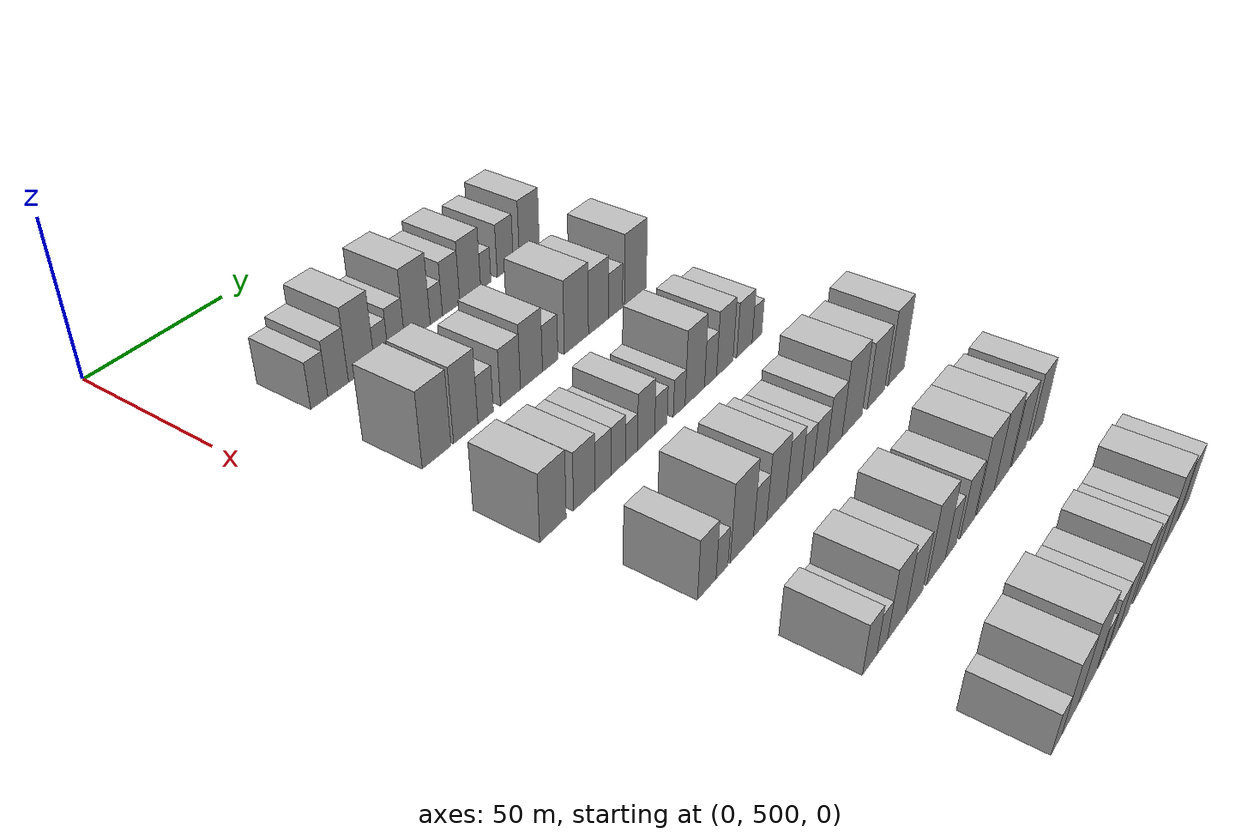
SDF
<sdf version="1.6">
 <world name="default">
  <model name="building_127">
   <static>1</static>
   <pose>50.0000 528.6047 0 0.000000 0.000000 0.000000</pose>
   <link name="link">
    <pose>0 0 7.50 0 0 0</pose>
    <collision name="collision"><geometry><box><size>20.0000 6.4215 15.0000</size></box></geometry></collision>
    <visual name="visual">
     <cast_shadows>0</cast_shadows>
     <geometry><box><size>20.0000 6.4215 15.0000</size></box></geometry>
     <material>
      <script>
       <uri>model://HANNAS_wall/materials/scripts</uri>
       <uri>model://HANNAS_wall/materials/textures</uri>
       <name>vrc/HANNAS_wall</name>
      </script>
     </material>
    </visual>
   </link>
  </model>
  <model name="building_128">
   <static>1</static>
   <pose>50.0000 535.7948 0 0.000000 0.000000 0.000000</pose>
   <link name="link">
    <pose>0 0 9.00 0 0 0</pose>
    <collision name="collision"><geometry><box><size>20.0000 7.9586 18.0000</size></box></geometry></collision>
    <visual name="visual">
     <cast_shadows>0</cast_shadows>
     <geometry><box><size>20.0000 7.9586 18.0000</size></box></geometry>
     <material>
      <script>
       <uri>model://HANNAS_wall/materials/scripts</uri>
       <uri>model://HANNAS_wall/materials/textures</uri>
       <name>vrc/HANNAS_wall</name>
      </script>
     </material>
    </visual>
   </link>
  </model>
  <model name="building_129">
   <static>1</static>
   <pose>50.0000 544.9164 0 0.000000 0.000000 0.000000</pose>
   <link name="link">
    <pose>0 0 12.00 0 0 0</pose>
    <collision name="collision"><geometry><box><size>20.0000 10.2847 24.0000</size></box></geometry></collision>
    <visual name="visual">
     <cast_shadows>0</cast_shadows>
     <geometry><box><size>20.0000 10.2847 24.0000</size></box></geometry>
     <material>
      <script>
       <uri>model://HANNAS_wall/materials/scripts</uri>
       <uri>model://HANNAS_wall/materials/textures</uri>
       <name>vrc/HANNAS_wall</name>
      </script>
     </material>
    </visual>
   </link>
  </model>
  <model name="building_130">
   <static>1</static>
   <pose>50.0000 552.8706 0 0.000000 0.000000 0.000000</pose>
   <link name="link">
    <pose>0 0 6.00 0 0 0</pose>
    <collision name="collision"><geometry><box><size>20.0000 5.6236 12.0000</size></box></geometry></collision>
    <visual name="visual">
     <cast_shadows>0</cast_shadows>
     <geometry><box><size>20.0000 5.6236 12.0000</size></box></geometry>
     <material>
      <script>
       <uri>model://HANNAS_wall/materials/scripts</uri>
       <uri>model://HANNAS_wall/materials/textures</uri>
       <name>vrc/HANNAS_wall</name>
      </script>
     </material>
    </visual>
   </link>
  </model>
  <model name="building_131">
   <static>1</static>
   <pose>50.0000 559.1392 0 0.000000 0.000000 0.000000</pose>
   <link name="link">
    <pose>0 0 7.50 0 0 0</pose>
    <collision name="collision"><geometry><box><size>20.0000 6.9136 15.0000</size></box></geometry></collision>
    <visual name="visual">
     <cast_shadows>0</cast_shadows>
     <geometry><box><size>20.0000 6.9136 15.0000</size></box></geometry>
     <material>
      <script>
       <uri>model://HANNAS_wall/materials/scripts</uri>
       <uri>model://HANNAS_wall/materials/textures</uri>
       <name>vrc/HANNAS_wall</name>
      </script>
     </material>
    </visual>
   </link>
  </model>
  <model name="building_132">
   <static>1</static>
   <pose>50.0000 568.0410 0 0.000000 0.000000 0.000000</pose>
   <link name="link">
    <pose>0 0 12.00 0 0 0</pose>
    <collision name="collision"><geometry><box><size>20.0000 10.8900 24.0000</size></box></geometry></collision>
    <visual name="visual">
     <cast_shadows>0</cast_shadows>
     <geometry><box><size>20.0000 10.8900 24.0000</size></box></geometry>
     <material>
      <script>
       <uri>model://HANNAS_wall/materials/scripts</uri>
       <uri>model://HANNAS_wall/materials/textures</uri>
       <name>vrc/HANNAS_wall</name>
      </script>
     </material>
    </visual>
   </link>
  </model>
  <model name="building_133">
   <static>1</static>
   <pose>50.0000 576.1920 0 0.000000 0.000000 0.000000</pose>
   <link name="link">
    <pose>0 0 6.00 0 0 0</pose>
    <collision name="collision"><geometry><box><size>20.0000 5.4120 12.0000</size></box></geometry></collision>
    <visual name="visual">
     <cast_shadows>0</cast_shadows>
     <geometry><box><size>20.0000 5.4120 12.0000</size></box></geometry>
     <material>
      <script>
       <uri>model://HANNAS_wall/materials/scripts</uri>
       <uri>model://HANNAS_wall/materials/textures</uri>
       <name>vrc/HANNAS_wall</name>
      </script>
     </material>
    </visual>
   </link>
  </model>
  <model name="building_134">
   <static>1</static>
   <pose>50.0000 582.8056 0 0.000000 0.000000 0.000000</pose>
   <link name="link">
    <pose>0 0 9.00 0 0 0</pose>
    <collision name="collision"><geometry><box><size>20.0000 7.8151 18.0000</size></box></geometry></collision>
    <visual name="visual">
     <cast_shadows>0</cast_shadows>
     <geometry><box><size>20.0000 7.8151 18.0000</size></box></geometry>
     <material>
      <script>
       <uri>model://HANNAS_wall/materials/scripts</uri>
       <uri>model://HANNAS_wall/materials/textures</uri>
       <name>vrc/HANNAS_wall</name>
      </script>
     </material>
    </visual>
   </link>
  </model>
  <model name="building_135">
   <static>1</static>
   <pose>50.0000 591.5448 0 0.000000 0.000000 0.000000</pose>
   <link name="link">
    <pose>0 0 10.50 0 0 0</pose>
    <collision name="collision"><geometry><box><size>20.0000 9.6633 21.0000</size></box></geometry></collision>
    <visual name="visual">
     <cast_shadows>0</cast_shadows>
     <geometry><box><size>20.0000 9.6633 21.0000</size></box></geometry>
     <material>
      <script>
       <uri>model://HANNAS_wall/materials/scripts</uri>
       <uri>model://HANNAS_wall/materials/textures</uri>
       <name>vrc/HANNAS_wall</name>
      </script>
     </material>
    </visual>
   </link>
  </model>
  <model name="building_136">
   <static>1</static>
   <pose>50.0000 598.8122 0 0.000000 0.000000 0.000000</pose>
   <link name="link">
    <pose>0 0 6.00 0 0 0</pose>
    <collision name="collision"><geometry><box><size>20.0000 4.8717 12.0000</size></box></geometry></collision>
    <visual name="visual">
     <cast_shadows>0</cast_shadows>
     <geometry><box><size>20.0000 4.8717 12.0000</size></box></geometry>
     <material>
      <script>
       <uri>model://HANNAS_wall/materials/scripts</uri>
       <uri>model://HANNAS_wall/materials/textures</uri>
       <name>vrc/HANNAS_wall</name>
      </script>
     </material>
    </visual>
   </link>
  </model>
  <model name="building_137">
   <static>1</static>
   <pose>50.0000 608.2025 0 0.000000 0.000000 0.000000</pose>
   <link name="link">
    <pose>0 0 9.00 0 0 0</pose>
    <collision name="collision"><geometry><box><size>20.0000 7.9088 18.0000</size></box></geometry></collision>
    <visual name="visual">
     <cast_shadows>0</cast_shadows>
     <geometry><box><size>20.0000 7.9088 18.0000</size></box></geometry>
     <material>
      <script>
       <uri>model://HANNAS_wall/materials/scripts</uri>
       <uri>model://HANNAS_wall/materials/textures</uri>
       <name>vrc/HANNAS_wall</name>
      </script>
     </material>
    </visual>
   </link>
  </model>
  <model name="building_138">
   <static>1</static>
   <pose>50.0000 620.1896 0 0.000000 0.000000 0.000000</pose>
   <link name="link">
    <pose>0 0 10.50 0 0 0</pose>
    <collision name="collision"><geometry><box><size>20.0000 10.0654 21.0000</size></box></geometry></collision>
    <visual name="visual">
     <cast_shadows>0</cast_shadows>
     <geometry><box><size>20.0000 10.0654 21.0000</size></box></geometry>
     <material>
      <script>
       <uri>model://HANNAS_wall/materials/scripts</uri>
       <uri>model://HANNAS_wall/materials/textures</uri>
       <name>vrc/HANNAS_wall</name>
      </script>
     </material>
    </visual>
   </link>
  </model>
  <model name="building_268">
   <static>1</static>
   <pose>90.0000 529.1811 0 0.000000 0.000000 0.000000</pose>
   <link name="link">
    <pose>0 0 12.00 0 0 0</pose>
    <collision name="collision"><geometry><box><size>20.0000 11.1215 24.0000</size></box></geometry></collision>
    <visual name="visual">
     <cast_shadows>0</cast_shadows>
     <geometry><box><size>20.0000 11.1215 24.0000</size></box></geometry>
     <material>
      <script>
       <uri>model://HANNAS_wall/materials/scripts</uri>
       <uri>model://HANNAS_wall/materials/textures</uri>
       <name>vrc/HANNAS_wall</name>
      </script>
     </material>
    </visual>
   </link>
  </model>
  <model name="building_269">
   <static>1</static>
   <pose>90.0000 540.6646 0 0.000000 0.000000 0.000000</pose>
   <link name="link">
    <pose>0 0 12.00 0 0 0</pose>
    <collision name="collision"><geometry><box><size>20.0000 9.8455 24.0000</size></box></geometry></collision>
    <visual name="visual">
     <cast_shadows>0</cast_shadows>
     <geometry><box><size>20.0000 9.8455 24.0000</size></box></geometry>
     <material>
      <script>
       <uri>model://HANNAS_wall/materials/scripts</uri>
       <uri>model://HANNAS_wall/materials/textures</uri>
       <name>vrc/HANNAS_wall</name>
      </script>
     </material>
    </visual>
   </link>
  </model>
  <model name="building_270">
   <static>1</static>
   <pose>90.0000 548.7944 0 0.000000 0.000000 0.000000</pose>
   <link name="link">
    <pose>0 0 7.50 0 0 0</pose>
    <collision name="collision"><geometry><box><size>20.0000 6.4140 15.0000</size></box></geometry></collision>
    <visual name="visual">
     <cast_shadows>0</cast_shadows>
     <geometry><box><size>20.0000 6.4140 15.0000</size></box></geometry>
     <material>
      <script>
       <uri>model://HANNAS_wall/materials/scripts</uri>
       <uri>model://HANNAS_wall/materials/textures</uri>
       <name>vrc/HANNAS_wall</name>
      </script>
     </material>
    </visual>
   </link>
  </model>
  <model name="building_271">
   <static>1</static>
   <pose>90.0000 559.3424 0 0.000000 0.000000 0.000000</pose>
   <link name="link">
    <pose>0 0 9.00 0 0 0</pose>
    <collision name="collision"><geometry><box><size>20.0000 8.6820 18.0000</size></box></geometry></collision>
    <visual name="visual">
     <cast_shadows>0</cast_shadows>
     <geometry><box><size>20.0000 8.6820 18.0000</size></box></geometry>
     <material>
      <script>
       <uri>model://HANNAS_wall/materials/scripts</uri>
       <uri>model://HANNAS_wall/materials/textures</uri>
       <name>vrc/HANNAS_wall</name>
      </script>
     </material>
    </visual>
   </link>
  </model>
  <model name="building_272">
   <static>1</static>
   <pose>90.0000 568.5859 0 0.000000 0.000000 0.000000</pose>
   <link name="link">
    <pose>0 0 10.50 0 0 0</pose>
    <collision name="collision"><geometry><box><size>20.0000 9.8050 21.0000</size></box></geometry></collision>
    <visual name="visual">
     <cast_shadows>0</cast_shadows>
     <geometry><box><size>20.0000 9.8050 21.0000</size></box></geometry>
     <material>
      <script>
       <uri>model://HANNAS_wall/materials/scripts</uri>
       <uri>model://HANNAS_wall/materials/textures</uri>
       <name>vrc/HANNAS_wall</name>
      </script>
     </material>
    </visual>
   </link>
  </model>
  <model name="building_273">
   <static>1</static>
   <pose>90.0000 577.0145 0 0.000000 0.000000 0.000000</pose>
   <link name="link">
    <pose>0 0 7.50 0 0 0</pose>
    <collision name="collision"><geometry><box><size>20.0000 7.0524 15.0000</size></box></geometry></collision>
    <visual name="visual">
     <cast_shadows>0</cast_shadows>
     <geometry><box><size>20.0000 7.0524 15.0000</size></box></geometry>
     <material>
      <script>
       <uri>model://HANNAS_wall/materials/scripts</uri>
       <uri>model://HANNAS_wall/materials/textures</uri>
       <name>vrc/HANNAS_wall</name>
      </script>
     </material>
    </visual>
   </link>
  </model>
  <model name="building_274">
   <static>1</static>
   <pose>90.0000 589.3083 0 0.000000 0.000000 0.000000</pose>
   <link name="link">
    <pose>0 0 12.00 0 0 0</pose>
    <collision name="collision"><geometry><box><size>20.0000 11.5352 24.0000</size></box></geometry></collision>
    <visual name="visual">
     <cast_shadows>0</cast_shadows>
     <geometry><box><size>20.0000 11.5352 24.0000</size></box></geometry>
     <material>
      <script>
       <uri>model://HANNAS_wall/materials/scripts</uri>
       <uri>model://HANNAS_wall/materials/textures</uri>
       <name>vrc/HANNAS_wall</name>
      </script>
     </material>
    </visual>
   </link>
  </model>
  <model name="building_275">
   <static>1</static>
   <pose>90.0000 600.1328 0 0.000000 0.000000 0.000000</pose>
   <link name="link">
    <pose>0 0 10.50 0 0 0</pose>
    <collision name="collision"><geometry><box><size>20.0000 10.1138 21.0000</size></box></geometry></collision>
    <visual name="visual">
     <cast_shadows>0</cast_shadows>
     <geometry><box><size>20.0000 10.1138 21.0000</size></box></geometry>
     <material>
      <script>
       <uri>model://HANNAS_wall/materials/scripts</uri>
       <uri>model://HANNAS_wall/materials/textures</uri>
       <name>vrc/HANNAS_wall</name>
      </script>
     </material>
    </visual>
   </link>
  </model>
  <model name="building_276">
   <static>1</static>
   <pose>90.0000 608.6691 0 0.000000 0.000000 0.000000</pose>
   <link name="link">
    <pose>0 0 7.50 0 0 0</pose>
    <collision name="collision"><geometry><box><size>20.0000 6.9588 15.0000</size></box></geometry></collision>
    <visual name="visual">
     <cast_shadows>0</cast_shadows>
     <geometry><box><size>20.0000 6.9588 15.0000</size></box></geometry>
     <material>
      <script>
       <uri>model://HANNAS_wall/materials/scripts</uri>
       <uri>model://HANNAS_wall/materials/textures</uri>
       <name>vrc/HANNAS_wall</name>
      </script>
     </material>
    </visual>
   </link>
  </model>
  <model name="building_277">
   <static>1</static>
   <pose>90.0000 618.8663 0 0.000000 0.000000 0.000000</pose>
   <link name="link">
    <pose>0 0 12.00 0 0 0</pose>
    <collision name="collision"><geometry><box><size>20.0000 11.4356 24.0000</size></box></geometry></collision>
    <visual name="visual">
     <cast_shadows>0</cast_shadows>
     <geometry><box><size>20.0000 11.4356 24.0000</size></box></geometry>
     <material>
      <script>
       <uri>model://HANNAS_wall/materials/scripts</uri>
       <uri>model://HANNAS_wall/materials/textures</uri>
       <name>vrc/HANNAS_wall</name>
      </script>
     </material>
    </visual>
   </link>
  </model>
  <model name="building_404">
   <static>1</static>
   <pose>130.0000 524.2119 0 0.000000 0.000000 0.000000</pose>
   <link name="link">
    <pose>0 0 10.50 0 0 0</pose>
    <collision name="collision"><geometry><box><size>20.0000 10.4842 21.0000</size></box></geometry></collision>
    <visual name="visual">
     <cast_shadows>0</cast_shadows>
     <geometry><box><size>20.0000 10.4842 21.0000</size></box></geometry>
     <material>
      <script>
       <uri>model://HANNAS_wall/materials/scripts</uri>
       <uri>model://HANNAS_wall/materials/textures</uri>
       <name>vrc/HANNAS_wall</name>
      </script>
     </material>
    </visual>
   </link>
  </model>
  <model name="building_405">
   <static>1</static>
   <pose>130.0000 536.8877 0 0.000000 0.000000 0.000000</pose>
   <link name="link">
    <pose>0 0 9.00 0 0 0</pose>
    <collision name="collision"><geometry><box><size>20.0000 8.8674 18.0000</size></box></geometry></collision>
    <visual name="visual">
     <cast_shadows>0</cast_shadows>
     <geometry><box><size>20.0000 8.8674 18.0000</size></box></geometry>
     <material>
      <script>
       <uri>model://HANNAS_wall/materials/scripts</uri>
       <uri>model://HANNAS_wall/materials/textures</uri>
       <name>vrc/HANNAS_wall</name>
      </script>
     </material>
    </visual>
   </link>
  </model>
  <model name="building_406">
   <static>1</static>
   <pose>130.0000 544.8704 0 0.000000 0.000000 0.000000</pose>
   <link name="link">
    <pose>0 0 7.50 0 0 0</pose>
    <collision name="collision"><geometry><box><size>20.0000 7.0980 15.0000</size></box></geometry></collision>
    <visual name="visual">
     <cast_shadows>0</cast_shadows>
     <geometry><box><size>20.0000 7.0980 15.0000</size></box></geometry>
     <material>
      <script>
       <uri>model://HANNAS_wall/materials/scripts</uri>
       <uri>model://HANNAS_wall/materials/textures</uri>
       <name>vrc/HANNAS_wall</name>
      </script>
     </material>
    </visual>
   </link>
  </model>
  <model name="building_407">
   <static>1</static>
   <pose>130.0000 551.5011 0 0.000000 0.000000 0.000000</pose>
   <link name="link">
    <pose>0 0 7.50 0 0 0</pose>
    <collision name="collision"><geometry><box><size>20.0000 6.1633 15.0000</size></box></geometry></collision>
    <visual name="visual">
     <cast_shadows>0</cast_shadows>
     <geometry><box><size>20.0000 6.1633 15.0000</size></box></geometry>
     <material>
      <script>
       <uri>model://HANNAS_wall/materials/scripts</uri>
       <uri>model://HANNAS_wall/materials/textures</uri>
       <name>vrc/HANNAS_wall</name>
      </script>
     </material>
    </visual>
   </link>
  </model>
  <model name="building_408">
   <static>1</static>
   <pose>130.0000 557.2835 0 0.000000 0.000000 0.000000</pose>
   <link name="link">
    <pose>0 0 6.00 0 0 0</pose>
    <collision name="collision"><geometry><box><size>20.0000 5.4015 12.0000</size></box></geometry></collision>
    <visual name="visual">
     <cast_shadows>0</cast_shadows>
     <geometry><box><size>20.0000 5.4015 12.0000</size></box></geometry>
     <material>
      <script>
       <uri>model://HANNAS_wall/materials/scripts</uri>
       <uri>model://HANNAS_wall/materials/textures</uri>
       <name>vrc/HANNAS_wall</name>
      </script>
     </material>
    </visual>
   </link>
  </model>
  <model name="building_409">
   <static>1</static>
   <pose>130.0000 563.9748 0 0.000000 0.000000 0.000000</pose>
   <link name="link">
    <pose>0 0 9.00 0 0 0</pose>
    <collision name="collision"><geometry><box><size>20.0000 7.9812 18.0000</size></box></geometry></collision>
    <visual name="visual">
     <cast_shadows>0</cast_shadows>
     <geometry><box><size>20.0000 7.9812 18.0000</size></box></geometry>
     <material>
      <script>
       <uri>model://HANNAS_wall/materials/scripts</uri>
       <uri>model://HANNAS_wall/materials/textures</uri>
       <name>vrc/HANNAS_wall</name>
      </script>
     </material>
    </visual>
   </link>
  </model>
  <model name="building_410">
   <static>1</static>
   <pose>130.0000 570.9114 0 0.000000 0.000000 0.000000</pose>
   <link name="link">
    <pose>0 0 6.00 0 0 0</pose>
    <collision name="collision"><geometry><box><size>20.0000 5.8921 12.0000</size></box></geometry></collision>
    <visual name="visual">
     <cast_shadows>0</cast_shadows>
     <geometry><box><size>20.0000 5.8921 12.0000</size></box></geometry>
     <material>
      <script>
       <uri>model://HANNAS_wall/materials/scripts</uri>
       <uri>model://HANNAS_wall/materials/textures</uri>
       <name>vrc/HANNAS_wall</name>
      </script>
     </material>
    </visual>
   </link>
  </model>
  <model name="building_411">
   <static>1</static>
   <pose>130.0000 579.7384 0 0.000000 0.000000 0.000000</pose>
   <link name="link">
    <pose>0 0 6.00 0 0 0</pose>
    <collision name="collision"><geometry><box><size>20.0000 5.7618 12.0000</size></box></geometry></collision>
    <visual name="visual">
     <cast_shadows>0</cast_shadows>
     <geometry><box><size>20.0000 5.7618 12.0000</size></box></geometry>
     <material>
      <script>
       <uri>model://HANNAS_wall/materials/scripts</uri>
       <uri>model://HANNAS_wall/materials/textures</uri>
       <name>vrc/HANNAS_wall</name>
      </script>
     </material>
    </visual>
   </link>
  </model>
  <model name="building_412">
   <static>1</static>
   <pose>130.0000 587.5087 0 0.000000 0.000000 0.000000</pose>
   <link name="link">
    <pose>0 0 12.00 0 0 0</pose>
    <collision name="collision"><geometry><box><size>20.0000 9.7788 24.0000</size></box></geometry></collision>
    <visual name="visual">
     <cast_shadows>0</cast_shadows>
     <geometry><box><size>20.0000 9.7788 24.0000</size></box></geometry>
     <material>
      <script>
       <uri>model://HANNAS_wall/materials/scripts</uri>
       <uri>model://HANNAS_wall/materials/textures</uri>
       <name>vrc/HANNAS_wall</name>
      </script>
     </material>
    </visual>
   </link>
  </model>
  <model name="building_413">
   <static>1</static>
   <pose>130.0000 595.5169 0 0.000000 0.000000 0.000000</pose>
   <link name="link">
    <pose>0 0 7.50 0 0 0</pose>
    <collision name="collision"><geometry><box><size>20.0000 6.2378 15.0000</size></box></geometry></collision>
    <visual name="visual">
     <cast_shadows>0</cast_shadows>
     <geometry><box><size>20.0000 6.2378 15.0000</size></box></geometry>
     <material>
      <script>
       <uri>model://HANNAS_wall/materials/scripts</uri>
       <uri>model://HANNAS_wall/materials/textures</uri>
       <name>vrc/HANNAS_wall</name>
      </script>
     </material>
    </visual>
   </link>
  </model>
  <model name="building_414">
   <static>1</static>
   <pose>130.0000 602.9886 0 0.000000 0.000000 0.000000</pose>
   <link name="link">
    <pose>0 0 10.50 0 0 0</pose>
    <collision name="collision"><geometry><box><size>20.0000 8.7056 21.0000</size></box></geometry></collision>
    <visual name="visual">
     <cast_shadows>0</cast_shadows>
     <geometry><box><size>20.0000 8.7056 21.0000</size></box></geometry>
     <material>
      <script>
       <uri>model://HANNAS_wall/materials/scripts</uri>
       <uri>model://HANNAS_wall/materials/textures</uri>
       <name>vrc/HANNAS_wall</name>
      </script>
     </material>
    </visual>
   </link>
  </model>
  <model name="building_415">
   <static>1</static>
   <pose>130.0000 613.5955 0 0.000000 0.000000 0.000000</pose>
   <link name="link">
    <pose>0 0 9.00 0 0 0</pose>
    <collision name="collision"><geometry><box><size>20.0000 8.5081 18.0000</size></box></geometry></collision>
    <visual name="visual">
     <cast_shadows>0</cast_shadows>
     <geometry><box><size>20.0000 8.5081 18.0000</size></box></geometry>
     <material>
      <script>
       <uri>model://HANNAS_wall/materials/scripts</uri>
       <uri>model://HANNAS_wall/materials/textures</uri>
       <name>vrc/HANNAS_wall</name>
      </script>
     </material>
    </visual>
   </link>
  </model>
  <model name="building_416">
   <static>1</static>
   <pose>130.0000 620.5600 0 0.000000 0.000000 0.000000</pose>
   <link name="link">
    <pose>0 0 6.00 0 0 0</pose>
    <collision name="collision"><geometry><box><size>20.0000 5.4210 12.0000</size></box></geometry></collision>
    <visual name="visual">
     <cast_shadows>0</cast_shadows>
     <geometry><box><size>20.0000 5.4210 12.0000</size></box></geometry>
     <material>
      <script>
       <uri>model://HANNAS_wall/materials/scripts</uri>
       <uri>model://HANNAS_wall/materials/textures</uri>
       <name>vrc/HANNAS_wall</name>
      </script>
     </material>
    </visual>
   </link>
  </model>
  <model name="building_533">
   <static>1</static>
   <pose>170.0000 528.1540 0 0.000000 0.000000 0.000000</pose>
   <link name="link">
    <pose>0 0 9.00 0 0 0</pose>
    <collision name="collision"><geometry><box><size>20.0000 7.9792 18.0000</size></box></geometry></collision>
    <visual name="visual">
     <cast_shadows>0</cast_shadows>
     <geometry><box><size>20.0000 7.9792 18.0000</size></box></geometry>
     <material>
      <script>
       <uri>model://HANNAS_wall/materials/scripts</uri>
       <uri>model://HANNAS_wall/materials/textures</uri>
       <name>vrc/HANNAS_wall</name>
      </script>
     </material>
    </visual>
   </link>
  </model>
  <model name="building_534">
   <static>1</static>
   <pose>170.0000 534.7596 0 0.000000 0.000000 0.000000</pose>
   <link name="link">
    <pose>0 0 6.00 0 0 0</pose>
    <collision name="collision"><geometry><box><size>20.0000 5.2320 12.0000</size></box></geometry></collision>
    <visual name="visual">
     <cast_shadows>0</cast_shadows>
     <geometry><box><size>20.0000 5.2320 12.0000</size></box></geometry>
     <material>
      <script>
       <uri>model://HANNAS_wall/materials/scripts</uri>
       <uri>model://HANNAS_wall/materials/textures</uri>
       <name>vrc/HANNAS_wall</name>
      </script>
     </material>
    </visual>
   </link>
  </model>
  <model name="building_535">
   <static>1</static>
   <pose>170.0000 543.7256 0 0.000000 0.000000 0.000000</pose>
   <link name="link">
    <pose>0 0 12.00 0 0 0</pose>
    <collision name="collision"><geometry><box><size>20.0000 10.7000 24.0000</size></box></geometry></collision>
    <visual name="visual">
     <cast_shadows>0</cast_shadows>
     <geometry><box><size>20.0000 10.7000 24.0000</size></box></geometry>
     <material>
      <script>
       <uri>model://HANNAS_wall/materials/scripts</uri>
       <uri>model://HANNAS_wall/materials/textures</uri>
       <name>vrc/HANNAS_wall</name>
      </script>
     </material>
    </visual>
   </link>
  </model>
  <model name="building_536">
   <static>1</static>
   <pose>170.0000 552.2036 0 0.000000 0.000000 0.000000</pose>
   <link name="link">
    <pose>0 0 7.50 0 0 0</pose>
    <collision name="collision"><geometry><box><size>20.0000 6.2559 15.0000</size></box></geometry></collision>
    <visual name="visual">
     <cast_shadows>0</cast_shadows>
     <geometry><box><size>20.0000 6.2559 15.0000</size></box></geometry>
     <material>
      <script>
       <uri>model://HANNAS_wall/materials/scripts</uri>
       <uri>model://HANNAS_wall/materials/textures</uri>
       <name>vrc/HANNAS_wall</name>
      </script>
     </material>
    </visual>
   </link>
  </model>
  <model name="building_537">
   <static>1</static>
   <pose>170.0000 560.1153 0 0.000000 0.000000 0.000000</pose>
   <link name="link">
    <pose>0 0 10.50 0 0 0</pose>
    <collision name="collision"><geometry><box><size>20.0000 9.5675 21.0000</size></box></geometry></collision>
    <visual name="visual">
     <cast_shadows>0</cast_shadows>
     <geometry><box><size>20.0000 9.5675 21.0000</size></box></geometry>
     <material>
      <script>
       <uri>model://HANNAS_wall/materials/scripts</uri>
       <uri>model://HANNAS_wall/materials/textures</uri>
       <name>vrc/HANNAS_wall</name>
      </script>
     </material>
    </visual>
   </link>
  </model>
  <model name="building_538">
   <static>1</static>
   <pose>170.0000 568.6511 0 0.000000 0.000000 0.000000</pose>
   <link name="link">
    <pose>0 0 9.00 0 0 0</pose>
    <collision name="collision"><geometry><box><size>20.0000 7.5041 18.0000</size></box></geometry></collision>
    <visual name="visual">
     <cast_shadows>0</cast_shadows>
     <geometry><box><size>20.0000 7.5041 18.0000</size></box></geometry>
     <material>
      <script>
       <uri>model://HANNAS_wall/materials/scripts</uri>
       <uri>model://HANNAS_wall/materials/textures</uri>
       <name>vrc/HANNAS_wall</name>
      </script>
     </material>
    </visual>
   </link>
  </model>
  <model name="building_539">
   <static>1</static>
   <pose>170.0000 575.5184 0 0.000000 0.000000 0.000000</pose>
   <link name="link">
    <pose>0 0 7.50 0 0 0</pose>
    <collision name="collision"><geometry><box><size>20.0000 6.2305 15.0000</size></box></geometry></collision>
    <visual name="visual">
     <cast_shadows>0</cast_shadows>
     <geometry><box><size>20.0000 6.2305 15.0000</size></box></geometry>
     <material>
      <script>
       <uri>model://HANNAS_wall/materials/scripts</uri>
       <uri>model://HANNAS_wall/materials/textures</uri>
       <name>vrc/HANNAS_wall</name>
      </script>
     </material>
    </visual>
   </link>
  </model>
  <model name="building_540">
   <static>1</static>
   <pose>170.0000 582.3429 0 0.000000 0.000000 0.000000</pose>
   <link name="link">
    <pose>0 0 7.50 0 0 0</pose>
    <collision name="collision"><geometry><box><size>20.0000 7.4185 15.0000</size></box></geometry></collision>
    <visual name="visual">
     <cast_shadows>0</cast_shadows>
     <geometry><box><size>20.0000 7.4185 15.0000</size></box></geometry>
     <material>
      <script>
       <uri>model://HANNAS_wall/materials/scripts</uri>
       <uri>model://HANNAS_wall/materials/textures</uri>
       <name>vrc/HANNAS_wall</name>
      </script>
     </material>
    </visual>
   </link>
  </model>
  <model name="building_541">
   <static>1</static>
   <pose>170.0000 590.1831 0 0.000000 0.000000 0.000000</pose>
   <link name="link">
    <pose>0 0 9.00 0 0 0</pose>
    <collision name="collision"><geometry><box><size>20.0000 8.2619 18.0000</size></box></geometry></collision>
    <visual name="visual">
     <cast_shadows>0</cast_shadows>
     <geometry><box><size>20.0000 8.2619 18.0000</size></box></geometry>
     <material>
      <script>
       <uri>model://HANNAS_wall/materials/scripts</uri>
       <uri>model://HANNAS_wall/materials/textures</uri>
       <name>vrc/HANNAS_wall</name>
      </script>
     </material>
    </visual>
   </link>
  </model>
  <model name="building_542">
   <static>1</static>
   <pose>170.0000 600.0564 0 0.000000 0.000000 0.000000</pose>
   <link name="link">
    <pose>0 0 12.00 0 0 0</pose>
    <collision name="collision"><geometry><box><size>20.0000 11.4848 24.0000</size></box></geometry></collision>
    <visual name="visual">
     <cast_shadows>0</cast_shadows>
     <geometry><box><size>20.0000 11.4848 24.0000</size></box></geometry>
     <material>
      <script>
       <uri>model://HANNAS_wall/materials/scripts</uri>
       <uri>model://HANNAS_wall/materials/textures</uri>
       <name>vrc/HANNAS_wall</name>
      </script>
     </material>
    </visual>
   </link>
  </model>
  <model name="building_543">
   <static>1</static>
   <pose>170.0000 614.0238 0 0.000000 0.000000 0.000000</pose>
   <link name="link">
    <pose>0 0 10.50 0 0 0</pose>
    <collision name="collision"><geometry><box><size>20.0000 10.4501 21.0000</size></box></geometry></collision>
    <visual name="visual">
     <cast_shadows>0</cast_shadows>
     <geometry><box><size>20.0000 10.4501 21.0000</size></box></geometry>
     <material>
      <script>
       <uri>model://HANNAS_wall/materials/scripts</uri>
       <uri>model://HANNAS_wall/materials/textures</uri>
       <name>vrc/HANNAS_wall</name>
      </script>
     </material>
    </visual>
   </link>
  </model>
  <model name="building_544">
   <static>1</static>
   <pose>170.0000 626.2958 0 0.000000 0.000000 0.000000</pose>
   <link name="link">
    <pose>0 0 12.00 0 0 0</pose>
    <collision name="collision"><geometry><box><size>20.0000 10.0939 24.0000</size></box></geometry></collision>
    <visual name="visual">
     <cast_shadows>0</cast_shadows>
     <geometry><box><size>20.0000 10.0939 24.0000</size></box></geometry>
     <material>
      <script>
       <uri>model://HANNAS_wall/materials/scripts</uri>
       <uri>model://HANNAS_wall/materials/textures</uri>
       <name>vrc/HANNAS_wall</name>
      </script>
     </material>
    </visual>
   </link>
  </model>
  <model name="building_679">
   <static>1</static>
   <pose>210.0000 528.7252 0 0.000000 0.000000 0.000000</pose>
   <link name="link">
    <pose>0 0 7.50 0 0 0</pose>
    <collision name="collision"><geometry><box><size>20.0000 6.8473 15.0000</size></box></geometry></collision>
    <visual name="visual">
     <cast_shadows>0</cast_shadows>
     <geometry><box><size>20.0000 6.8473 15.0000</size></box></geometry>
     <material>
      <script>
       <uri>model://HANNAS_wall/materials/scripts</uri>
       <uri>model://HANNAS_wall/materials/textures</uri>
       <name>vrc/HANNAS_wall</name>
      </script>
     </material>
    </visual>
   </link>
  </model>
  <model name="building_680">
   <static>1</static>
   <pose>210.0000 534.7103 0 0.000000 0.000000 0.000000</pose>
   <link name="link">
    <pose>0 0 6.00 0 0 0</pose>
    <collision name="collision"><geometry><box><size>20.0000 5.1230 12.0000</size></box></geometry></collision>
    <visual name="visual">
     <cast_shadows>0</cast_shadows>
     <geometry><box><size>20.0000 5.1230 12.0000</size></box></geometry>
     <material>
      <script>
       <uri>model://HANNAS_wall/materials/scripts</uri>
       <uri>model://HANNAS_wall/materials/textures</uri>
       <name>vrc/HANNAS_wall</name>
      </script>
     </material>
    </visual>
   </link>
  </model>
  <model name="building_681">
   <static>1</static>
   <pose>210.0000 541.9233 0 0.000000 0.000000 0.000000</pose>
   <link name="link">
    <pose>0 0 10.50 0 0 0</pose>
    <collision name="collision"><geometry><box><size>20.0000 9.3028 21.0000</size></box></geometry></collision>
    <visual name="visual">
     <cast_shadows>0</cast_shadows>
     <geometry><box><size>20.0000 9.3028 21.0000</size></box></geometry>
     <material>
      <script>
       <uri>model://HANNAS_wall/materials/scripts</uri>
       <uri>model://HANNAS_wall/materials/textures</uri>
       <name>vrc/HANNAS_wall</name>
      </script>
     </material>
    </visual>
   </link>
  </model>
  <model name="building_682">
   <static>1</static>
   <pose>210.0000 551.0211 0 0.000000 0.000000 0.000000</pose>
   <link name="link">
    <pose>0 0 9.00 0 0 0</pose>
    <collision name="collision"><geometry><box><size>20.0000 8.8930 18.0000</size></box></geometry></collision>
    <visual name="visual">
     <cast_shadows>0</cast_shadows>
     <geometry><box><size>20.0000 8.8930 18.0000</size></box></geometry>
     <material>
      <script>
       <uri>model://HANNAS_wall/materials/scripts</uri>
       <uri>model://HANNAS_wall/materials/textures</uri>
       <name>vrc/HANNAS_wall</name>
      </script>
     </material>
    </visual>
   </link>
  </model>
  <model name="building_683">
   <static>1</static>
   <pose>210.0000 562.5917 0 0.000000 0.000000 0.000000</pose>
   <link name="link">
    <pose>0 0 12.00 0 0 0</pose>
    <collision name="collision"><geometry><box><size>20.0000 10.2483 24.0000</size></box></geometry></collision>
    <visual name="visual">
     <cast_shadows>0</cast_shadows>
     <geometry><box><size>20.0000 10.2483 24.0000</size></box></geometry>
     <material>
      <script>
       <uri>model://HANNAS_wall/materials/scripts</uri>
       <uri>model://HANNAS_wall/materials/textures</uri>
       <name>vrc/HANNAS_wall</name>
      </script>
     </material>
    </visual>
   </link>
  </model>
  <model name="building_684">
   <static>1</static>
   <pose>210.0000 570.8876 0 0.000000 0.000000 0.000000</pose>
   <link name="link">
    <pose>0 0 7.50 0 0 0</pose>
    <collision name="collision"><geometry><box><size>20.0000 6.3434 15.0000</size></box></geometry></collision>
    <visual name="visual">
     <cast_shadows>0</cast_shadows>
     <geometry><box><size>20.0000 6.3434 15.0000</size></box></geometry>
     <material>
      <script>
       <uri>model://HANNAS_wall/materials/scripts</uri>
       <uri>model://HANNAS_wall/materials/textures</uri>
       <name>vrc/HANNAS_wall</name>
      </script>
     </material>
    </visual>
   </link>
  </model>
  <model name="building_685">
   <static>1</static>
   <pose>210.0000 580.4185 0 0.000000 0.000000 0.000000</pose>
   <link name="link">
    <pose>0 0 9.00 0 0 0</pose>
    <collision name="collision"><geometry><box><size>20.0000 8.7185 18.0000</size></box></geometry></collision>
    <visual name="visual">
     <cast_shadows>0</cast_shadows>
     <geometry><box><size>20.0000 8.7185 18.0000</size></box></geometry>
     <material>
      <script>
       <uri>model://HANNAS_wall/materials/scripts</uri>
       <uri>model://HANNAS_wall/materials/textures</uri>
       <name>vrc/HANNAS_wall</name>
      </script>
     </material>
    </visual>
   </link>
  </model>
  <model name="building_686">
   <static>1</static>
   <pose>210.0000 591.2563 0 0.000000 0.000000 0.000000</pose>
   <link name="link">
    <pose>0 0 12.00 0 0 0</pose>
    <collision name="collision"><geometry><box><size>20.0000 10.9569 24.0000</size></box></geometry></collision>
    <visual name="visual">
     <cast_shadows>0</cast_shadows>
     <geometry><box><size>20.0000 10.9569 24.0000</size></box></geometry>
     <material>
      <script>
       <uri>model://HANNAS_wall/materials/scripts</uri>
       <uri>model://HANNAS_wall/materials/textures</uri>
       <name>vrc/HANNAS_wall</name>
      </script>
     </material>
    </visual>
   </link>
  </model>
  <model name="building_687">
   <static>1</static>
   <pose>210.0000 601.7510 0 0.000000 0.000000 0.000000</pose>
   <link name="link">
    <pose>0 0 12.00 0 0 0</pose>
    <collision name="collision"><geometry><box><size>20.0000 10.0326 24.0000</size></box></geometry></collision>
    <visual name="visual">
     <cast_shadows>0</cast_shadows>
     <geometry><box><size>20.0000 10.0326 24.0000</size></box></geometry>
     <material>
      <script>
       <uri>model://HANNAS_wall/materials/scripts</uri>
       <uri>model://HANNAS_wall/materials/textures</uri>
       <name>vrc/HANNAS_wall</name>
      </script>
     </material>
    </visual>
   </link>
  </model>
  <model name="building_688">
   <static>1</static>
   <pose>210.0000 612.6759 0 0.000000 0.000000 0.000000</pose>
   <link name="link">
    <pose>0 0 10.50 0 0 0</pose>
    <collision name="collision"><geometry><box><size>20.0000 9.8172 21.0000</size></box></geometry></collision>
    <visual name="visual">
     <cast_shadows>0</cast_shadows>
     <geometry><box><size>20.0000 9.8172 21.0000</size></box></geometry>
     <material>
      <script>
       <uri>model://HANNAS_wall/materials/scripts</uri>
       <uri>model://HANNAS_wall/materials/textures</uri>
       <name>vrc/HANNAS_wall</name>
      </script>
     </material>
    </visual>
   </link>
  </model>
  <model name="building_689">
   <static>1</static>
   <pose>210.0000 624.9863 0 0.000000 0.000000 0.000000</pose>
   <link name="link">
    <pose>0 0 10.50 0 0 0</pose>
    <collision name="collision"><geometry><box><size>20.0000 8.8034 21.0000</size></box></geometry></collision>
    <visual name="visual">
     <cast_shadows>0</cast_shadows>
     <geometry><box><size>20.0000 8.8034 21.0000</size></box></geometry>
     <material>
      <script>
       <uri>model://HANNAS_wall/materials/scripts</uri>
       <uri>model://HANNAS_wall/materials/textures</uri>
       <name>vrc/HANNAS_wall</name>
      </script>
     </material>
    </visual>
   </link>
  </model>
  <model name="building_815">
   <static>1</static>
   <pose>250.0000 530.6838 0 0.000000 0.000000 0.000000</pose>
   <link name="link">
    <pose>0 0 6.00 0 0 0</pose>
    <collision name="collision"><geometry><box><size>20.0000 5.6793 12.0000</size></box></geometry></collision>
    <visual name="visual">
     <cast_shadows>0</cast_shadows>
     <geometry><box><size>20.0000 5.6793 12.0000</size></box></geometry>
     <material>
      <script>
       <uri>model://HANNAS_wall/materials/scripts</uri>
       <uri>model://HANNAS_wall/materials/textures</uri>
       <name>vrc/HANNAS_wall</name>
      </script>
     </material>
    </visual>
   </link>
  </model>
  <model name="building_816">
   <static>1</static>
   <pose>250.0000 538.2816 0 0.000000 0.000000 0.000000</pose>
   <link name="link">
    <pose>0 0 10.50 0 0 0</pose>
    <collision name="collision"><geometry><box><size>20.0000 9.5163 21.0000</size></box></geometry></collision>
    <visual name="visual">
     <cast_shadows>0</cast_shadows>
     <geometry><box><size>20.0000 9.5163 21.0000</size></box></geometry>
     <material>
      <script>
       <uri>model://HANNAS_wall/materials/scripts</uri>
       <uri>model://HANNAS_wall/materials/textures</uri>
       <name>vrc/HANNAS_wall</name>
      </script>
     </material>
    </visual>
   </link>
  </model>
  <model name="building_817">
   <static>1</static>
   <pose>250.0000 548.6091 0 0.000000 0.000000 0.000000</pose>
   <link name="link">
    <pose>0 0 12.00 0 0 0</pose>
    <collision name="collision"><geometry><box><size>20.0000 11.1387 24.0000</size></box></geometry></collision>
    <visual name="visual">
     <cast_shadows>0</cast_shadows>
     <geometry><box><size>20.0000 11.1387 24.0000</size></box></geometry>
     <material>
      <script>
       <uri>model://HANNAS_wall/materials/scripts</uri>
       <uri>model://HANNAS_wall/materials/textures</uri>
       <name>vrc/HANNAS_wall</name>
      </script>
     </material>
    </visual>
   </link>
  </model>
  <model name="building_818">
   <static>1</static>
   <pose>250.0000 557.8126 0 0.000000 0.000000 0.000000</pose>
   <link name="link">
    <pose>0 0 6.00 0 0 0</pose>
    <collision name="collision"><geometry><box><size>20.0000 5.2683 12.0000</size></box></geometry></collision>
    <visual name="visual">
     <cast_shadows>0</cast_shadows>
     <geometry><box><size>20.0000 5.2683 12.0000</size></box></geometry>
     <material>
      <script>
       <uri>model://HANNAS_wall/materials/scripts</uri>
       <uri>model://HANNAS_wall/materials/textures</uri>
       <name>vrc/HANNAS_wall</name>
      </script>
     </material>
    </visual>
   </link>
  </model>
  <model name="building_819">
   <static>1</static>
   <pose>250.0000 564.8329 0 0.000000 0.000000 0.000000</pose>
   <link name="link">
    <pose>0 0 7.50 0 0 0</pose>
    <collision name="collision"><geometry><box><size>20.0000 6.7723 15.0000</size></box></geometry></collision>
    <visual name="visual">
     <cast_shadows>0</cast_shadows>
     <geometry><box><size>20.0000 6.7723 15.0000</size></box></geometry>
     <material>
      <script>
       <uri>model://HANNAS_wall/materials/scripts</uri>
       <uri>model://HANNAS_wall/materials/textures</uri>
       <name>vrc/HANNAS_wall</name>
      </script>
     </material>
    </visual>
   </link>
  </model>
  <model name="building_820">
   <static>1</static>
   <pose>250.0000 571.7773 0 0.000000 0.000000 0.000000</pose>
   <link name="link">
    <pose>0 0 7.50 0 0 0</pose>
    <collision name="collision"><geometry><box><size>20.0000 7.1165 15.0000</size></box></geometry></collision>
    <visual name="visual">
     <cast_shadows>0</cast_shadows>
     <geometry><box><size>20.0000 7.1165 15.0000</size></box></geometry>
     <material>
      <script>
       <uri>model://HANNAS_wall/materials/scripts</uri>
       <uri>model://HANNAS_wall/materials/textures</uri>
       <name>vrc/HANNAS_wall</name>
      </script>
     </material>
    </visual>
   </link>
  </model>
  <model name="building_821">
   <static>1</static>
   <pose>250.0000 582.3551 0 0.000000 0.000000 0.000000</pose>
   <link name="link">
    <pose>0 0 9.00 0 0 0</pose>
    <collision name="collision"><geometry><box><size>20.0000 8.0391 18.0000</size></box></geometry></collision>
    <visual name="visual">
     <cast_shadows>0</cast_shadows>
     <geometry><box><size>20.0000 8.0391 18.0000</size></box></geometry>
     <material>
      <script>
       <uri>model://HANNAS_wall/materials/scripts</uri>
       <uri>model://HANNAS_wall/materials/textures</uri>
       <name>vrc/HANNAS_wall</name>
      </script>
     </material>
    </visual>
   </link>
  </model>
  <model name="building_822">
   <static>1</static>
   <pose>250.0000 589.8744 0 0.000000 0.000000 0.000000</pose>
   <link name="link">
    <pose>0 0 7.50 0 0 0</pose>
    <collision name="collision"><geometry><box><size>20.0000 6.9996 15.0000</size></box></geometry></collision>
    <visual name="visual">
     <cast_shadows>0</cast_shadows>
     <geometry><box><size>20.0000 6.9996 15.0000</size></box></geometry>
     <material>
      <script>
       <uri>model://HANNAS_wall/materials/scripts</uri>
       <uri>model://HANNAS_wall/materials/textures</uri>
       <name>vrc/HANNAS_wall</name>
      </script>
     </material>
    </visual>
   </link>
  </model>
  <model name="building_823">
   <static>1</static>
   <pose>250.0000 597.0427 0 0.000000 0.000000 0.000000</pose>
   <link name="link">
    <pose>0 0 7.50 0 0 0</pose>
    <collision name="collision"><geometry><box><size>20.0000 7.3370 15.0000</size></box></geometry></collision>
    <visual name="visual">
     <cast_shadows>0</cast_shadows>
     <geometry><box><size>20.0000 7.3370 15.0000</size></box></geometry>
     <material>
      <script>
       <uri>model://HANNAS_wall/materials/scripts</uri>
       <uri>model://HANNAS_wall/materials/textures</uri>
       <name>vrc/HANNAS_wall</name>
      </script>
     </material>
    </visual>
   </link>
  </model>
  <model name="building_824">
   <static>1</static>
   <pose>250.0000 605.5737 0 0.000000 0.000000 0.000000</pose>
   <link name="link">
    <pose>0 0 10.50 0 0 0</pose>
    <collision name="collision"><geometry><box><size>20.0000 9.7250 21.0000</size></box></geometry></collision>
    <visual name="visual">
     <cast_shadows>0</cast_shadows>
     <geometry><box><size>20.0000 9.7250 21.0000</size></box></geometry>
     <material>
      <script>
       <uri>model://HANNAS_wall/materials/scripts</uri>
       <uri>model://HANNAS_wall/materials/textures</uri>
       <name>vrc/HANNAS_wall</name>
      </script>
     </material>
    </visual>
   </link>
  </model>
  <model name="building_825">
   <static>1</static>
   <pose>250.0000 615.7687 0 0.000000 0.000000 0.000000</pose>
   <link name="link">
    <pose>0 0 9.00 0 0 0</pose>
    <collision name="collision"><geometry><box><size>20.0000 8.6650 18.0000</size></box></geometry></collision>
    <visual name="visual">
     <cast_shadows>0</cast_shadows>
     <geometry><box><size>20.0000 8.6650 18.0000</size></box></geometry>
     <material>
      <script>
       <uri>model://HANNAS_wall/materials/scripts</uri>
       <uri>model://HANNAS_wall/materials/textures</uri>
       <name>vrc/HANNAS_wall</name>
      </script>
     </material>
    </visual>
   </link>
  </model>
 </world>
</sdf>
